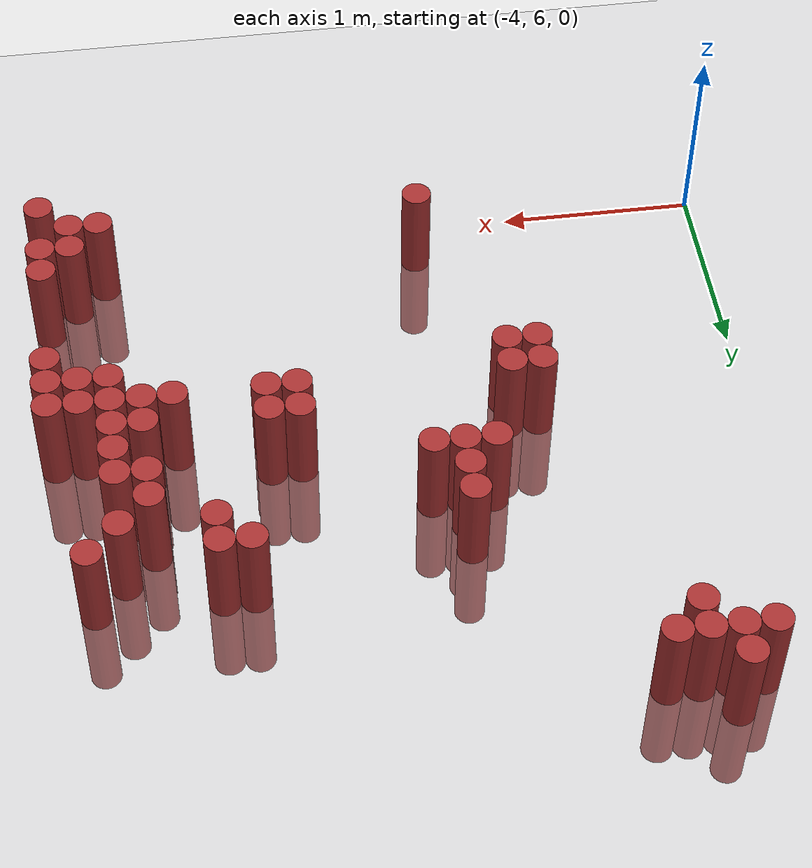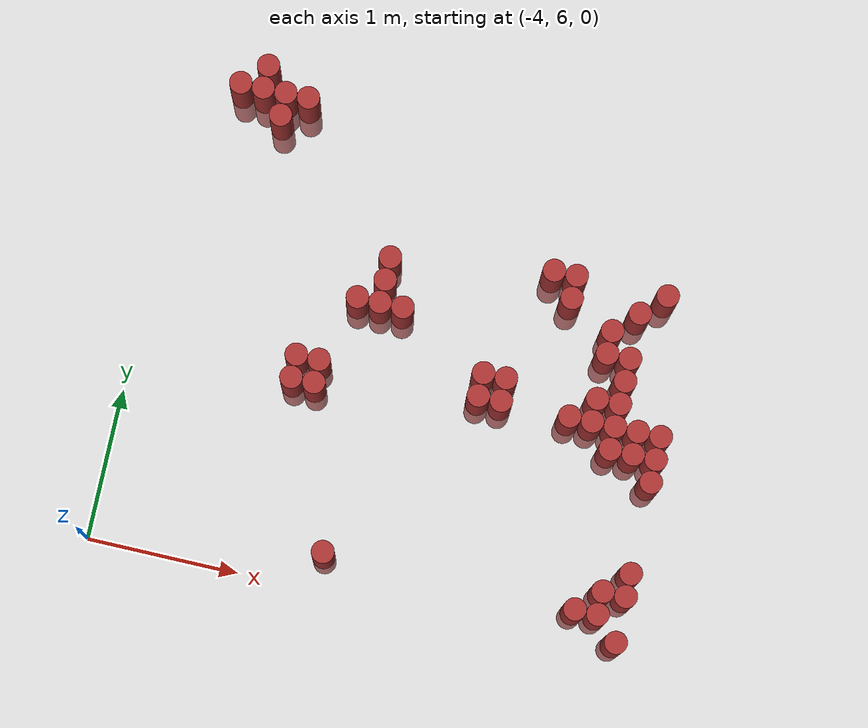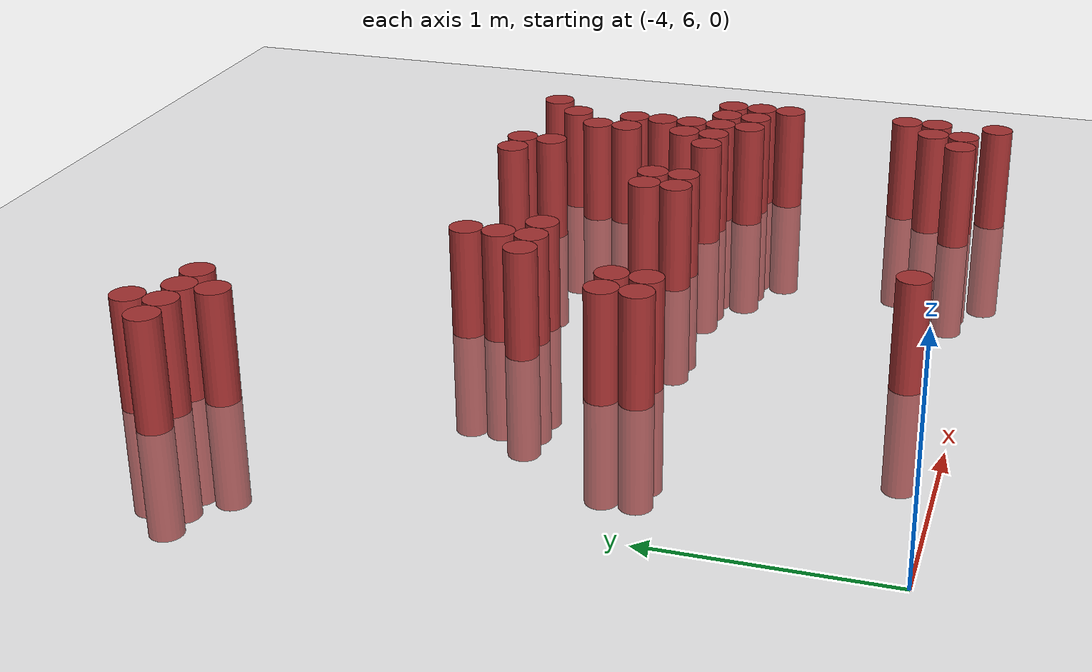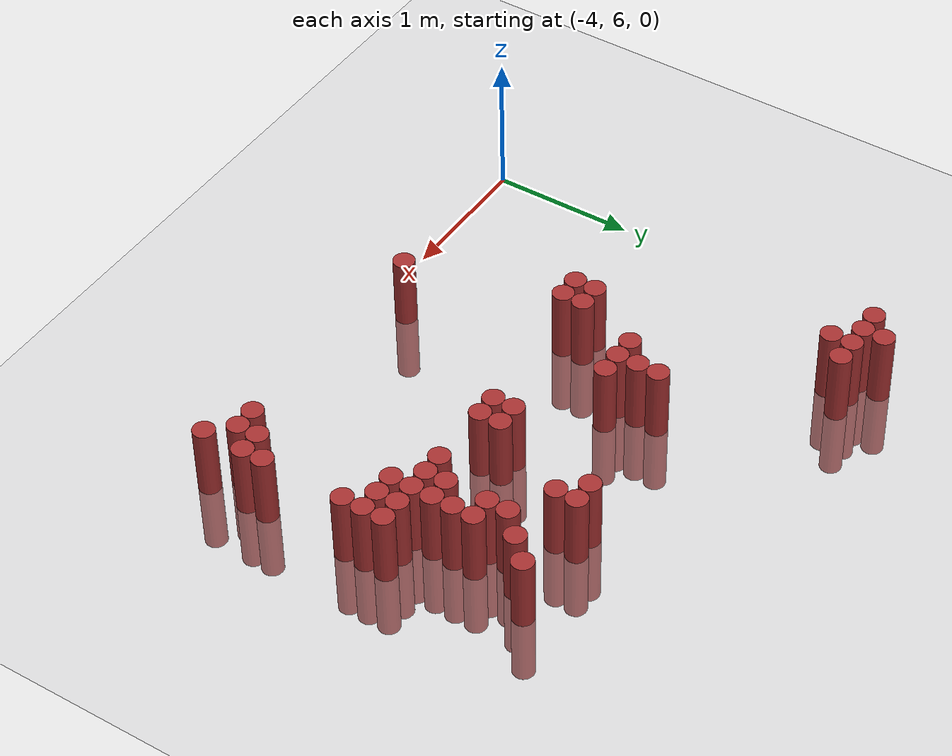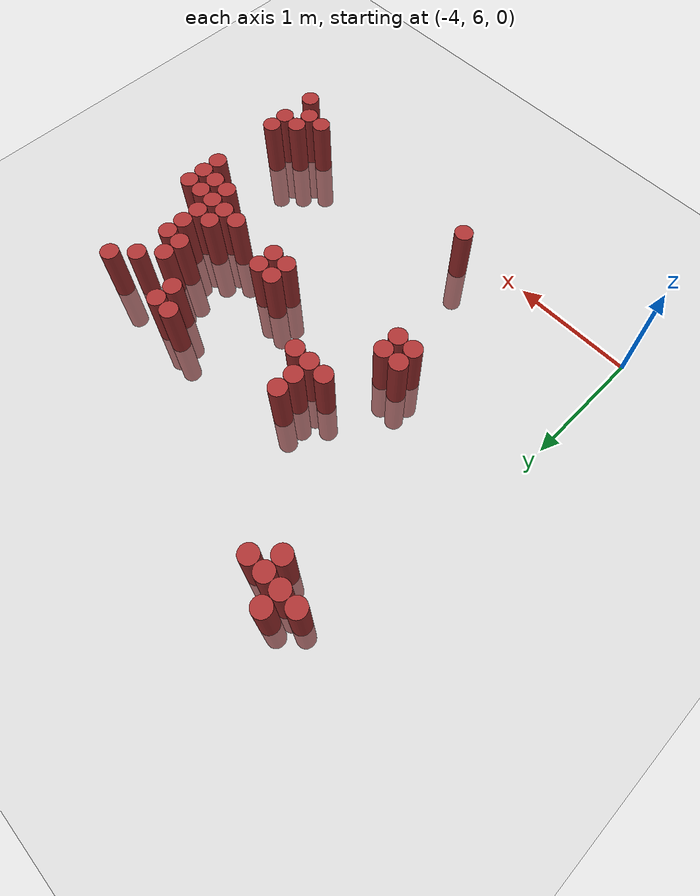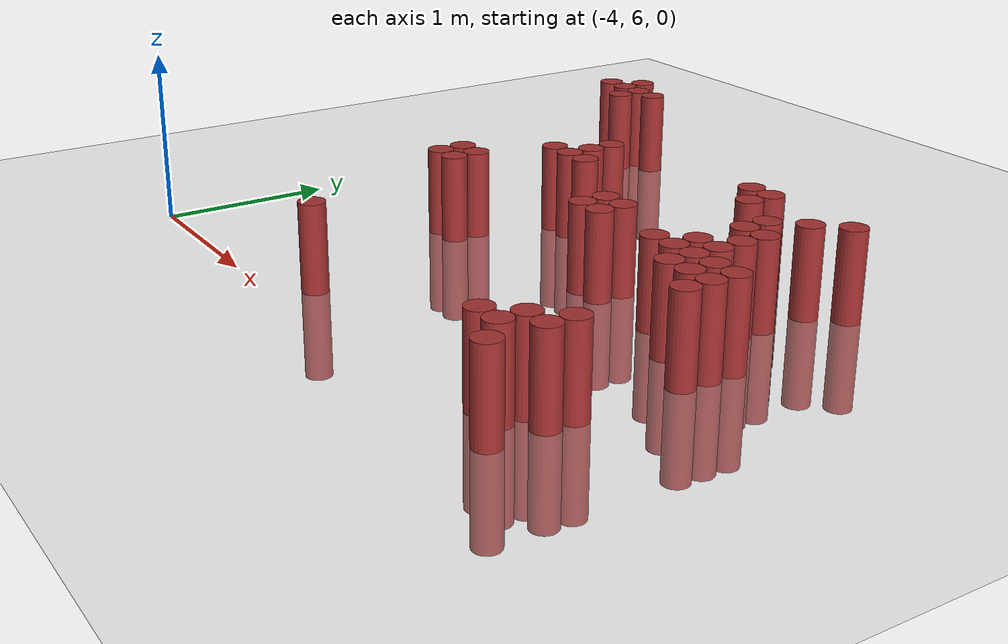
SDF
<sdf version="1.6">
 <world name="default">
  <model name="ground_plane">
   <static>1</static>
   <link name="link">
    <collision name="collision">
     <geometry><plane><normal>0 0 1</normal><size>100 100</size></plane></geometry>
     <surface><friction><ode><mu>100</mu><mu2>50</mu2></ode></friction></surface>
    </collision>
    <visual name="visual">
     <cast_shadows>0</cast_shadows>
     <geometry><plane><normal>0 0 1</normal><size>100 100</size></plane></geometry>
     <material>
      <script><uri>file://media/materials/scripts/gazebo.material</uri><name>Gazebo/Grey</name></script>
     </material>
    </visual>
   </link>
  </model>
  <model name="unit_cylinder_153">
   <static>1</static>
   <pose>-3.675000 9.075000 0.000000 0.000000 0.000000 0.000000</pose>
   <link name="link">
    <inertial>
     <mass>1</mass>
     <inertia><ixx>0.145833</ixx><ixy>0</ixy><ixz>0</ixz><iyy>0.145833</iyy><iyz>0</iyz><izz>0.125</izz></inertia>
    </inertial>
    <collision name="collision">
     <geometry><cylinder><radius>0.075000</radius><length>1</length></cylinder></geometry>
    </collision>
    <visual name="visual">
     <geometry><cylinder><radius>0.075000</radius><length>1</length></cylinder></geometry>
     <material>
      <ambient>0.648000 0.192000 0.192000 1</ambient>
      <diffuse>0.648000 0.192000 0.192000 1</diffuse>
     </material>
     <material>
      <script><name>Gazebo/Grey</name><uri>file://media/materials/scripts/gazebo.material</uri></script>
     </material>
    </visual>
   </link>
  </model>
  <model name="unit_cylinder_154">
   <static>1</static>
   <pose>-3.525000 9.075000 0.000000 0.000000 0.000000 0.000000</pose>
   <link name="link">
    <inertial>
     <mass>1</mass>
     <inertia><ixx>0.145833</ixx><ixy>0</ixy><ixz>0</ixz><iyy>0.145833</iyy><iyz>0</iyz><izz>0.125</izz></inertia>
    </inertial>
    <collision name="collision">
     <geometry><cylinder><radius>0.075000</radius><length>1</length></cylinder></geometry>
    </collision>
    <visual name="visual">
     <geometry><cylinder><radius>0.075000</radius><length>1</length></cylinder></geometry>
     <material>
      <ambient>0.648000 0.192000 0.192000 1</ambient>
      <diffuse>0.648000 0.192000 0.192000 1</diffuse>
     </material>
     <material>
      <script><name>Gazebo/Grey</name><uri>file://media/materials/scripts/gazebo.material</uri></script>
     </material>
    </visual>
   </link>
  </model>
  <model name="unit_cylinder_155">
   <static>1</static>
   <pose>-3.525000 9.225000 0.000000 0.000000 0.000000 0.000000</pose>
   <link name="link">
    <inertial>
     <mass>1</mass>
     <inertia><ixx>0.145833</ixx><ixy>0</ixy><ixz>0</ixz><iyy>0.145833</iyy><iyz>0</iyz><izz>0.125</izz></inertia>
    </inertial>
    <collision name="collision">
     <geometry><cylinder><radius>0.075000</radius><length>1</length></cylinder></geometry>
    </collision>
    <visual name="visual">
     <geometry><cylinder><radius>0.075000</radius><length>1</length></cylinder></geometry>
     <material>
      <ambient>0.648000 0.192000 0.192000 1</ambient>
      <diffuse>0.648000 0.192000 0.192000 1</diffuse>
     </material>
     <material>
      <script><name>Gazebo/Grey</name><uri>file://media/materials/scripts/gazebo.material</uri></script>
     </material>
    </visual>
   </link>
  </model>
  <model name="unit_cylinder_156">
   <static>1</static>
   <pose>-3.375000 8.925000 0.000000 0.000000 0.000000 0.000000</pose>
   <link name="link">
    <inertial>
     <mass>1</mass>
     <inertia><ixx>0.145833</ixx><ixy>0</ixy><ixz>0</ixz><iyy>0.145833</iyy><iyz>0</iyz><izz>0.125</izz></inertia>
    </inertial>
    <collision name="collision">
     <geometry><cylinder><radius>0.075000</radius><length>1</length></cylinder></geometry>
    </collision>
    <visual name="visual">
     <geometry><cylinder><radius>0.075000</radius><length>1</length></cylinder></geometry>
     <material>
      <ambient>0.648000 0.192000 0.192000 1</ambient>
      <diffuse>0.648000 0.192000 0.192000 1</diffuse>
     </material>
     <material>
      <script><name>Gazebo/Grey</name><uri>file://media/materials/scripts/gazebo.material</uri></script>
     </material>
    </visual>
   </link>
  </model>
  <model name="unit_cylinder_157">
   <static>1</static>
   <pose>-3.375000 9.075000 0.000000 0.000000 0.000000 0.000000</pose>
   <link name="link">
    <inertial>
     <mass>1</mass>
     <inertia><ixx>0.145833</ixx><ixy>0</ixy><ixz>0</ixz><iyy>0.145833</iyy><iyz>0</iyz><izz>0.125</izz></inertia>
    </inertial>
    <collision name="collision">
     <geometry><cylinder><radius>0.075000</radius><length>1</length></cylinder></geometry>
    </collision>
    <visual name="visual">
     <geometry><cylinder><radius>0.075000</radius><length>1</length></cylinder></geometry>
     <material>
      <ambient>0.648000 0.192000 0.192000 1</ambient>
      <diffuse>0.648000 0.192000 0.192000 1</diffuse>
     </material>
     <material>
      <script><name>Gazebo/Grey</name><uri>file://media/materials/scripts/gazebo.material</uri></script>
     </material>
    </visual>
   </link>
  </model>
  <model name="unit_cylinder_158">
   <static>1</static>
   <pose>-3.225000 9.075000 0.000000 0.000000 0.000000 0.000000</pose>
   <link name="link">
    <inertial>
     <mass>1</mass>
     <inertia><ixx>0.145833</ixx><ixy>0</ixy><ixz>0</ixz><iyy>0.145833</iyy><iyz>0</iyz><izz>0.125</izz></inertia>
    </inertial>
    <collision name="collision">
     <geometry><cylinder><radius>0.075000</radius><length>1</length></cylinder></geometry>
    </collision>
    <visual name="visual">
     <geometry><cylinder><radius>0.075000</radius><length>1</length></cylinder></geometry>
     <material>
      <ambient>0.648000 0.192000 0.192000 1</ambient>
      <diffuse>0.648000 0.192000 0.192000 1</diffuse>
     </material>
     <material>
      <script><name>Gazebo/Grey</name><uri>file://media/materials/scripts/gazebo.material</uri></script>
     </material>
    </visual>
   </link>
  </model>
  <model name="unit_cylinder_162">
   <static>1</static>
   <pose>-2.925000 7.275000 0.000000 0.000000 0.000000 0.000000</pose>
   <link name="link">
    <inertial>
     <mass>1</mass>
     <inertia><ixx>0.145833</ixx><ixy>0</ixy><ixz>0</ixz><iyy>0.145833</iyy><iyz>0</iyz><izz>0.125</izz></inertia>
    </inertial>
    <collision name="collision">
     <geometry><cylinder><radius>0.075000</radius><length>1</length></cylinder></geometry>
    </collision>
    <visual name="visual">
     <geometry><cylinder><radius>0.075000</radius><length>1</length></cylinder></geometry>
     <material>
      <ambient>0.648000 0.192000 0.192000 1</ambient>
      <diffuse>0.648000 0.192000 0.192000 1</diffuse>
     </material>
     <material>
      <script><name>Gazebo/Grey</name><uri>file://media/materials/scripts/gazebo.material</uri></script>
     </material>
    </visual>
   </link>
  </model>
  <model name="unit_cylinder_163">
   <static>1</static>
   <pose>-2.925000 7.425000 0.000000 0.000000 0.000000 0.000000</pose>
   <link name="link">
    <inertial>
     <mass>1</mass>
     <inertia><ixx>0.145833</ixx><ixy>0</ixy><ixz>0</ixz><iyy>0.145833</iyy><iyz>0</iyz><izz>0.125</izz></inertia>
    </inertial>
    <collision name="collision">
     <geometry><cylinder><radius>0.075000</radius><length>1</length></cylinder></geometry>
    </collision>
    <visual name="visual">
     <geometry><cylinder><radius>0.075000</radius><length>1</length></cylinder></geometry>
     <material>
      <ambient>0.648000 0.192000 0.192000 1</ambient>
      <diffuse>0.648000 0.192000 0.192000 1</diffuse>
     </material>
     <material>
      <script><name>Gazebo/Grey</name><uri>file://media/materials/scripts/gazebo.material</uri></script>
     </material>
    </visual>
   </link>
  </model>
  <model name="unit_cylinder_166">
   <static>1</static>
   <pose>-2.775000 7.275000 0.000000 0.000000 0.000000 0.000000</pose>
   <link name="link">
    <inertial>
     <mass>1</mass>
     <inertia><ixx>0.145833</ixx><ixy>0</ixy><ixz>0</ixz><iyy>0.145833</iyy><iyz>0</iyz><izz>0.125</izz></inertia>
    </inertial>
    <collision name="collision">
     <geometry><cylinder><radius>0.075000</radius><length>1</length></cylinder></geometry>
    </collision>
    <visual name="visual">
     <geometry><cylinder><radius>0.075000</radius><length>1</length></cylinder></geometry>
     <material>
      <ambient>0.648000 0.192000 0.192000 1</ambient>
      <diffuse>0.648000 0.192000 0.192000 1</diffuse>
     </material>
     <material>
      <script><name>Gazebo/Grey</name><uri>file://media/materials/scripts/gazebo.material</uri></script>
     </material>
    </visual>
   </link>
  </model>
  <model name="unit_cylinder_167">
   <static>1</static>
   <pose>-2.775000 7.425000 0.000000 0.000000 0.000000 0.000000</pose>
   <link name="link">
    <inertial>
     <mass>1</mass>
     <inertia><ixx>0.145833</ixx><ixy>0</ixy><ixz>0</ixz><iyy>0.145833</iyy><iyz>0</iyz><izz>0.125</izz></inertia>
    </inertial>
    <collision name="collision">
     <geometry><cylinder><radius>0.075000</radius><length>1</length></cylinder></geometry>
    </collision>
    <visual name="visual">
     <geometry><cylinder><radius>0.075000</radius><length>1</length></cylinder></geometry>
     <material>
      <ambient>0.648000 0.192000 0.192000 1</ambient>
      <diffuse>0.648000 0.192000 0.192000 1</diffuse>
     </material>
     <material>
      <script><name>Gazebo/Grey</name><uri>file://media/materials/scripts/gazebo.material</uri></script>
     </material>
    </visual>
   </link>
  </model>
  <model name="unit_cylinder_172">
   <static>1</static>
   <pose>-2.625000 7.875000 0.000000 0.000000 0.000000 0.000000</pose>
   <link name="link">
    <inertial>
     <mass>1</mass>
     <inertia><ixx>0.145833</ixx><ixy>0</ixy><ixz>0</ixz><iyy>0.145833</iyy><iyz>0</iyz><izz>0.125</izz></inertia>
    </inertial>
    <collision name="collision">
     <geometry><cylinder><radius>0.075000</radius><length>1</length></cylinder></geometry>
    </collision>
    <visual name="visual">
     <geometry><cylinder><radius>0.075000</radius><length>1</length></cylinder></geometry>
     <material>
      <ambient>0.648000 0.192000 0.192000 1</ambient>
      <diffuse>0.648000 0.192000 0.192000 1</diffuse>
     </material>
     <material>
      <script><name>Gazebo/Grey</name><uri>file://media/materials/scripts/gazebo.material</uri></script>
     </material>
    </visual>
   </link>
  </model>
  <model name="unit_cylinder_176">
   <static>1</static>
   <pose>-2.475000 6.225000 0.000000 0.000000 0.000000 0.000000</pose>
   <link name="link">
    <inertial>
     <mass>1</mass>
     <inertia><ixx>0.145833</ixx><ixy>0</ixy><ixz>0</ixz><iyy>0.145833</iyy><iyz>0</iyz><izz>0.125</izz></inertia>
    </inertial>
    <collision name="collision">
     <geometry><cylinder><radius>0.075000</radius><length>1</length></cylinder></geometry>
    </collision>
    <visual name="visual">
     <geometry><cylinder><radius>0.075000</radius><length>1</length></cylinder></geometry>
     <material>
      <ambient>0.648000 0.192000 0.192000 1</ambient>
      <diffuse>0.648000 0.192000 0.192000 1</diffuse>
     </material>
     <material>
      <script><name>Gazebo/Grey</name><uri>file://media/materials/scripts/gazebo.material</uri></script>
     </material>
    </visual>
   </link>
  </model>
  <model name="unit_cylinder_177">
   <static>1</static>
   <pose>-2.475000 7.875000 0.000000 0.000000 0.000000 0.000000</pose>
   <link name="link">
    <inertial>
     <mass>1</mass>
     <inertia><ixx>0.145833</ixx><ixy>0</ixy><ixz>0</ixz><iyy>0.145833</iyy><iyz>0</iyz><izz>0.125</izz></inertia>
    </inertial>
    <collision name="collision">
     <geometry><cylinder><radius>0.075000</radius><length>1</length></cylinder></geometry>
    </collision>
    <visual name="visual">
     <geometry><cylinder><radius>0.075000</radius><length>1</length></cylinder></geometry>
     <material>
      <ambient>0.648000 0.192000 0.192000 1</ambient>
      <diffuse>0.648000 0.192000 0.192000 1</diffuse>
     </material>
     <material>
      <script><name>Gazebo/Grey</name><uri>file://media/materials/scripts/gazebo.material</uri></script>
     </material>
    </visual>
   </link>
  </model>
  <model name="unit_cylinder_178">
   <static>1</static>
   <pose>-2.475000 8.025000 0.000000 0.000000 0.000000 0.000000</pose>
   <link name="link">
    <inertial>
     <mass>1</mass>
     <inertia><ixx>0.145833</ixx><ixy>0</ixy><ixz>0</ixz><iyy>0.145833</iyy><iyz>0</iyz><izz>0.125</izz></inertia>
    </inertial>
    <collision name="collision">
     <geometry><cylinder><radius>0.075000</radius><length>1</length></cylinder></geometry>
    </collision>
    <visual name="visual">
     <geometry><cylinder><radius>0.075000</radius><length>1</length></cylinder></geometry>
     <material>
      <ambient>0.648000 0.192000 0.192000 1</ambient>
      <diffuse>0.648000 0.192000 0.192000 1</diffuse>
     </material>
     <material>
      <script><name>Gazebo/Grey</name><uri>file://media/materials/scripts/gazebo.material</uri></script>
     </material>
    </visual>
   </link>
  </model>
  <model name="unit_cylinder_179">
   <static>1</static>
   <pose>-2.475000 8.175000 0.000000 0.000000 0.000000 0.000000</pose>
   <link name="link">
    <inertial>
     <mass>1</mass>
     <inertia><ixx>0.145833</ixx><ixy>0</ixy><ixz>0</ixz><iyy>0.145833</iyy><iyz>0</iyz><izz>0.125</izz></inertia>
    </inertial>
    <collision name="collision">
     <geometry><cylinder><radius>0.075000</radius><length>1</length></cylinder></geometry>
    </collision>
    <visual name="visual">
     <geometry><cylinder><radius>0.075000</radius><length>1</length></cylinder></geometry>
     <material>
      <ambient>0.648000 0.192000 0.192000 1</ambient>
      <diffuse>0.648000 0.192000 0.192000 1</diffuse>
     </material>
     <material>
      <script><name>Gazebo/Grey</name><uri>file://media/materials/scripts/gazebo.material</uri></script>
     </material>
    </visual>
   </link>
  </model>
  <model name="unit_cylinder_184">
   <static>1</static>
   <pose>-2.325000 7.875000 0.000000 0.000000 0.000000 0.000000</pose>
   <link name="link">
    <inertial>
     <mass>1</mass>
     <inertia><ixx>0.145833</ixx><ixy>0</ixy><ixz>0</ixz><iyy>0.145833</iyy><iyz>0</iyz><izz>0.125</izz></inertia>
    </inertial>
    <collision name="collision">
     <geometry><cylinder><radius>0.075000</radius><length>1</length></cylinder></geometry>
    </collision>
    <visual name="visual">
     <geometry><cylinder><radius>0.075000</radius><length>1</length></cylinder></geometry>
     <material>
      <ambient>0.648000 0.192000 0.192000 1</ambient>
      <diffuse>0.648000 0.192000 0.192000 1</diffuse>
     </material>
     <material>
      <script><name>Gazebo/Grey</name><uri>file://media/materials/scripts/gazebo.material</uri></script>
     </material>
    </visual>
   </link>
  </model>
  <model name="unit_cylinder_189">
   <static>1</static>
   <pose>-1.725000 7.425000 0.000000 0.000000 0.000000 0.000000</pose>
   <link name="link">
    <inertial>
     <mass>1</mass>
     <inertia><ixx>0.145833</ixx><ixy>0</ixy><ixz>0</ixz><iyy>0.145833</iyy><iyz>0</iyz><izz>0.125</izz></inertia>
    </inertial>
    <collision name="collision">
     <geometry><cylinder><radius>0.075000</radius><length>1</length></cylinder></geometry>
    </collision>
    <visual name="visual">
     <geometry><cylinder><radius>0.075000</radius><length>1</length></cylinder></geometry>
     <material>
      <ambient>0.648000 0.192000 0.192000 1</ambient>
      <diffuse>0.648000 0.192000 0.192000 1</diffuse>
     </material>
     <material>
      <script><name>Gazebo/Grey</name><uri>file://media/materials/scripts/gazebo.material</uri></script>
     </material>
    </visual>
   </link>
  </model>
  <model name="unit_cylinder_190">
   <static>1</static>
   <pose>-1.725000 7.575000 0.000000 0.000000 0.000000 0.000000</pose>
   <link name="link">
    <inertial>
     <mass>1</mass>
     <inertia><ixx>0.145833</ixx><ixy>0</ixy><ixz>0</ixz><iyy>0.145833</iyy><iyz>0</iyz><izz>0.125</izz></inertia>
    </inertial>
    <collision name="collision">
     <geometry><cylinder><radius>0.075000</radius><length>1</length></cylinder></geometry>
    </collision>
    <visual name="visual">
     <geometry><cylinder><radius>0.075000</radius><length>1</length></cylinder></geometry>
     <material>
      <ambient>0.648000 0.192000 0.192000 1</ambient>
      <diffuse>0.648000 0.192000 0.192000 1</diffuse>
     </material>
     <material>
      <script><name>Gazebo/Grey</name><uri>file://media/materials/scripts/gazebo.material</uri></script>
     </material>
    </visual>
   </link>
  </model>
  <model name="unit_cylinder_191">
   <static>1</static>
   <pose>-1.575000 7.425000 0.000000 0.000000 0.000000 0.000000</pose>
   <link name="link">
    <inertial>
     <mass>1</mass>
     <inertia><ixx>0.145833</ixx><ixy>0</ixy><ixz>0</ixz><iyy>0.145833</iyy><iyz>0</iyz><izz>0.125</izz></inertia>
    </inertial>
    <collision name="collision">
     <geometry><cylinder><radius>0.075000</radius><length>1</length></cylinder></geometry>
    </collision>
    <visual name="visual">
     <geometry><cylinder><radius>0.075000</radius><length>1</length></cylinder></geometry>
     <material>
      <ambient>0.648000 0.192000 0.192000 1</ambient>
      <diffuse>0.648000 0.192000 0.192000 1</diffuse>
     </material>
     <material>
      <script><name>Gazebo/Grey</name><uri>file://media/materials/scripts/gazebo.material</uri></script>
     </material>
    </visual>
   </link>
  </model>
  <model name="unit_cylinder_192">
   <static>1</static>
   <pose>-1.575000 7.575000 0.000000 0.000000 0.000000 0.000000</pose>
   <link name="link">
    <inertial>
     <mass>1</mass>
     <inertia><ixx>0.145833</ixx><ixy>0</ixy><ixz>0</ixz><iyy>0.145833</iyy><iyz>0</iyz><izz>0.125</izz></inertia>
    </inertial>
    <collision name="collision">
     <geometry><cylinder><radius>0.075000</radius><length>1</length></cylinder></geometry>
    </collision>
    <visual name="visual">
     <geometry><cylinder><radius>0.075000</radius><length>1</length></cylinder></geometry>
     <material>
      <ambient>0.648000 0.192000 0.192000 1</ambient>
      <diffuse>0.648000 0.192000 0.192000 1</diffuse>
     </material>
     <material>
      <script><name>Gazebo/Grey</name><uri>file://media/materials/scripts/gazebo.material</uri></script>
     </material>
    </visual>
   </link>
  </model>
  <model name="unit_cylinder_193">
   <static>1</static>
   <pose>-1.425000 8.325000 0.000000 0.000000 0.000000 0.000000</pose>
   <link name="link">
    <inertial>
     <mass>1</mass>
     <inertia><ixx>0.145833</ixx><ixy>0</ixy><ixz>0</ixz><iyy>0.145833</iyy><iyz>0</iyz><izz>0.125</izz></inertia>
    </inertial>
    <collision name="collision">
     <geometry><cylinder><radius>0.075000</radius><length>1</length></cylinder></geometry>
    </collision>
    <visual name="visual">
     <geometry><cylinder><radius>0.075000</radius><length>1</length></cylinder></geometry>
     <material>
      <ambient>0.648000 0.192000 0.192000 1</ambient>
      <diffuse>0.648000 0.192000 0.192000 1</diffuse>
     </material>
     <material>
      <script><name>Gazebo/Grey</name><uri>file://media/materials/scripts/gazebo.material</uri></script>
     </material>
    </visual>
   </link>
  </model>
  <model name="unit_cylinder_194">
   <static>1</static>
   <pose>-1.275000 8.175000 0.000000 0.000000 0.000000 0.000000</pose>
   <link name="link">
    <inertial>
     <mass>1</mass>
     <inertia><ixx>0.145833</ixx><ixy>0</ixy><ixz>0</ixz><iyy>0.145833</iyy><iyz>0</iyz><izz>0.125</izz></inertia>
    </inertial>
    <collision name="collision">
     <geometry><cylinder><radius>0.075000</radius><length>1</length></cylinder></geometry>
    </collision>
    <visual name="visual">
     <geometry><cylinder><radius>0.075000</radius><length>1</length></cylinder></geometry>
     <material>
      <ambient>0.648000 0.192000 0.192000 1</ambient>
      <diffuse>0.648000 0.192000 0.192000 1</diffuse>
     </material>
     <material>
      <script><name>Gazebo/Grey</name><uri>file://media/materials/scripts/gazebo.material</uri></script>
     </material>
    </visual>
   </link>
  </model>
  <model name="unit_cylinder_195">
   <static>1</static>
   <pose>-1.275000 8.325000 0.000000 0.000000 0.000000 0.000000</pose>
   <link name="link">
    <inertial>
     <mass>1</mass>
     <inertia><ixx>0.145833</ixx><ixy>0</ixy><ixz>0</ixz><iyy>0.145833</iyy><iyz>0</iyz><izz>0.125</izz></inertia>
    </inertial>
    <collision name="collision">
     <geometry><cylinder><radius>0.075000</radius><length>1</length></cylinder></geometry>
    </collision>
    <visual name="visual">
     <geometry><cylinder><radius>0.075000</radius><length>1</length></cylinder></geometry>
     <material>
      <ambient>0.648000 0.192000 0.192000 1</ambient>
      <diffuse>0.648000 0.192000 0.192000 1</diffuse>
     </material>
     <material>
      <script><name>Gazebo/Grey</name><uri>file://media/materials/scripts/gazebo.material</uri></script>
     </material>
    </visual>
   </link>
  </model>
  <model name="unit_cylinder_196">
   <static>1</static>
   <pose>-1.125000 7.425000 0.000000 0.000000 0.000000 0.000000</pose>
   <link name="link">
    <inertial>
     <mass>1</mass>
     <inertia><ixx>0.145833</ixx><ixy>0</ixy><ixz>0</ixz><iyy>0.145833</iyy><iyz>0</iyz><izz>0.125</izz></inertia>
    </inertial>
    <collision name="collision">
     <geometry><cylinder><radius>0.075000</radius><length>1</length></cylinder></geometry>
    </collision>
    <visual name="visual">
     <geometry><cylinder><radius>0.075000</radius><length>1</length></cylinder></geometry>
     <material>
      <ambient>0.648000 0.192000 0.192000 1</ambient>
      <diffuse>0.648000 0.192000 0.192000 1</diffuse>
     </material>
     <material>
      <script><name>Gazebo/Grey</name><uri>file://media/materials/scripts/gazebo.material</uri></script>
     </material>
    </visual>
   </link>
  </model>
  <model name="unit_cylinder_198">
   <static>1</static>
   <pose>-0.975000 7.425000 0.000000 0.000000 0.000000 0.000000</pose>
   <link name="link">
    <inertial>
     <mass>1</mass>
     <inertia><ixx>0.145833</ixx><ixy>0</ixy><ixz>0</ixz><iyy>0.145833</iyy><iyz>0</iyz><izz>0.125</izz></inertia>
    </inertial>
    <collision name="collision">
     <geometry><cylinder><radius>0.075000</radius><length>1</length></cylinder></geometry>
    </collision>
    <visual name="visual">
     <geometry><cylinder><radius>0.075000</radius><length>1</length></cylinder></geometry>
     <material>
      <ambient>0.648000 0.192000 0.192000 1</ambient>
      <diffuse>0.648000 0.192000 0.192000 1</diffuse>
     </material>
     <material>
      <script><name>Gazebo/Grey</name><uri>file://media/materials/scripts/gazebo.material</uri></script>
     </material>
    </visual>
   </link>
  </model>
  <model name="unit_cylinder_199">
   <static>1</static>
   <pose>-0.975000 7.575000 0.000000 0.000000 0.000000 0.000000</pose>
   <link name="link">
    <inertial>
     <mass>1</mass>
     <inertia><ixx>0.145833</ixx><ixy>0</ixy><ixz>0</ixz><iyy>0.145833</iyy><iyz>0</iyz><izz>0.125</izz></inertia>
    </inertial>
    <collision name="collision">
     <geometry><cylinder><radius>0.075000</radius><length>1</length></cylinder></geometry>
    </collision>
    <visual name="visual">
     <geometry><cylinder><radius>0.075000</radius><length>1</length></cylinder></geometry>
     <material>
      <ambient>0.648000 0.192000 0.192000 1</ambient>
      <diffuse>0.648000 0.192000 0.192000 1</diffuse>
     </material>
     <material>
      <script><name>Gazebo/Grey</name><uri>file://media/materials/scripts/gazebo.material</uri></script>
     </material>
    </visual>
   </link>
  </model>
  <model name="unit_cylinder_200">
   <static>1</static>
   <pose>-0.975000 7.875000 0.000000 0.000000 0.000000 0.000000</pose>
   <link name="link">
    <inertial>
     <mass>1</mass>
     <inertia><ixx>0.145833</ixx><ixy>0</ixy><ixz>0</ixz><iyy>0.145833</iyy><iyz>0</iyz><izz>0.125</izz></inertia>
    </inertial>
    <collision name="collision">
     <geometry><cylinder><radius>0.075000</radius><length>1</length></cylinder></geometry>
    </collision>
    <visual name="visual">
     <geometry><cylinder><radius>0.075000</radius><length>1</length></cylinder></geometry>
     <material>
      <ambient>0.648000 0.192000 0.192000 1</ambient>
      <diffuse>0.648000 0.192000 0.192000 1</diffuse>
     </material>
     <material>
      <script><name>Gazebo/Grey</name><uri>file://media/materials/scripts/gazebo.material</uri></script>
     </material>
    </visual>
   </link>
  </model>
  <model name="unit_cylinder_201">
   <static>1</static>
   <pose>-0.975000 8.025000 0.000000 0.000000 0.000000 0.000000</pose>
   <link name="link">
    <inertial>
     <mass>1</mass>
     <inertia><ixx>0.145833</ixx><ixy>0</ixy><ixz>0</ixz><iyy>0.145833</iyy><iyz>0</iyz><izz>0.125</izz></inertia>
    </inertial>
    <collision name="collision">
     <geometry><cylinder><radius>0.075000</radius><length>1</length></cylinder></geometry>
    </collision>
    <visual name="visual">
     <geometry><cylinder><radius>0.075000</radius><length>1</length></cylinder></geometry>
     <material>
      <ambient>0.648000 0.192000 0.192000 1</ambient>
      <diffuse>0.648000 0.192000 0.192000 1</diffuse>
     </material>
     <material>
      <script><name>Gazebo/Grey</name><uri>file://media/materials/scripts/gazebo.material</uri></script>
     </material>
    </visual>
   </link>
  </model>
  <model name="unit_cylinder_203">
   <static>1</static>
   <pose>-0.825000 6.225000 0.000000 0.000000 0.000000 0.000000</pose>
   <link name="link">
    <inertial>
     <mass>1</mass>
     <inertia><ixx>0.145833</ixx><ixy>0</ixy><ixz>0</ixz><iyy>0.145833</iyy><iyz>0</iyz><izz>0.125</izz></inertia>
    </inertial>
    <collision name="collision">
     <geometry><cylinder><radius>0.075000</radius><length>1</length></cylinder></geometry>
    </collision>
    <visual name="visual">
     <geometry><cylinder><radius>0.075000</radius><length>1</length></cylinder></geometry>
     <material>
      <ambient>0.648000 0.192000 0.192000 1</ambient>
      <diffuse>0.648000 0.192000 0.192000 1</diffuse>
     </material>
     <material>
      <script><name>Gazebo/Grey</name><uri>file://media/materials/scripts/gazebo.material</uri></script>
     </material>
    </visual>
   </link>
  </model>
  <model name="unit_cylinder_204">
   <static>1</static>
   <pose>-0.825000 7.275000 0.000000 0.000000 0.000000 0.000000</pose>
   <link name="link">
    <inertial>
     <mass>1</mass>
     <inertia><ixx>0.145833</ixx><ixy>0</ixy><ixz>0</ixz><iyy>0.145833</iyy><iyz>0</iyz><izz>0.125</izz></inertia>
    </inertial>
    <collision name="collision">
     <geometry><cylinder><radius>0.075000</radius><length>1</length></cylinder></geometry>
    </collision>
    <visual name="visual">
     <geometry><cylinder><radius>0.075000</radius><length>1</length></cylinder></geometry>
     <material>
      <ambient>0.648000 0.192000 0.192000 1</ambient>
      <diffuse>0.648000 0.192000 0.192000 1</diffuse>
     </material>
     <material>
      <script><name>Gazebo/Grey</name><uri>file://media/materials/scripts/gazebo.material</uri></script>
     </material>
    </visual>
   </link>
  </model>
  <model name="unit_cylinder_205">
   <static>1</static>
   <pose>-0.825000 7.425000 0.000000 0.000000 0.000000 0.000000</pose>
   <link name="link">
    <inertial>
     <mass>1</mass>
     <inertia><ixx>0.145833</ixx><ixy>0</ixy><ixz>0</ixz><iyy>0.145833</iyy><iyz>0</iyz><izz>0.125</izz></inertia>
    </inertial>
    <collision name="collision">
     <geometry><cylinder><radius>0.075000</radius><length>1</length></cylinder></geometry>
    </collision>
    <visual name="visual">
     <geometry><cylinder><radius>0.075000</radius><length>1</length></cylinder></geometry>
     <material>
      <ambient>0.648000 0.192000 0.192000 1</ambient>
      <diffuse>0.648000 0.192000 0.192000 1</diffuse>
     </material>
     <material>
      <script><name>Gazebo/Grey</name><uri>file://media/materials/scripts/gazebo.material</uri></script>
     </material>
    </visual>
   </link>
  </model>
  <model name="unit_cylinder_206">
   <static>1</static>
   <pose>-0.825000 7.575000 0.000000 0.000000 0.000000 0.000000</pose>
   <link name="link">
    <inertial>
     <mass>1</mass>
     <inertia><ixx>0.145833</ixx><ixy>0</ixy><ixz>0</ixz><iyy>0.145833</iyy><iyz>0</iyz><izz>0.125</izz></inertia>
    </inertial>
    <collision name="collision">
     <geometry><cylinder><radius>0.075000</radius><length>1</length></cylinder></geometry>
    </collision>
    <visual name="visual">
     <geometry><cylinder><radius>0.075000</radius><length>1</length></cylinder></geometry>
     <material>
      <ambient>0.648000 0.192000 0.192000 1</ambient>
      <diffuse>0.648000 0.192000 0.192000 1</diffuse>
     </material>
     <material>
      <script><name>Gazebo/Grey</name><uri>file://media/materials/scripts/gazebo.material</uri></script>
     </material>
    </visual>
   </link>
  </model>
  <model name="unit_cylinder_207">
   <static>1</static>
   <pose>-0.825000 7.725000 0.000000 0.000000 0.000000 0.000000</pose>
   <link name="link">
    <inertial>
     <mass>1</mass>
     <inertia><ixx>0.145833</ixx><ixy>0</ixy><ixz>0</ixz><iyy>0.145833</iyy><iyz>0</iyz><izz>0.125</izz></inertia>
    </inertial>
    <collision name="collision">
     <geometry><cylinder><radius>0.075000</radius><length>1</length></cylinder></geometry>
    </collision>
    <visual name="visual">
     <geometry><cylinder><radius>0.075000</radius><length>1</length></cylinder></geometry>
     <material>
      <ambient>0.648000 0.192000 0.192000 1</ambient>
      <diffuse>0.648000 0.192000 0.192000 1</diffuse>
     </material>
     <material>
      <script><name>Gazebo/Grey</name><uri>file://media/materials/scripts/gazebo.material</uri></script>
     </material>
    </visual>
   </link>
  </model>
  <model name="unit_cylinder_208">
   <static>1</static>
   <pose>-0.825000 7.875000 0.000000 0.000000 0.000000 0.000000</pose>
   <link name="link">
    <inertial>
     <mass>1</mass>
     <inertia><ixx>0.145833</ixx><ixy>0</ixy><ixz>0</ixz><iyy>0.145833</iyy><iyz>0</iyz><izz>0.125</izz></inertia>
    </inertial>
    <collision name="collision">
     <geometry><cylinder><radius>0.075000</radius><length>1</length></cylinder></geometry>
    </collision>
    <visual name="visual">
     <geometry><cylinder><radius>0.075000</radius><length>1</length></cylinder></geometry>
     <material>
      <ambient>0.648000 0.192000 0.192000 1</ambient>
      <diffuse>0.648000 0.192000 0.192000 1</diffuse>
     </material>
     <material>
      <script><name>Gazebo/Grey</name><uri>file://media/materials/scripts/gazebo.material</uri></script>
     </material>
    </visual>
   </link>
  </model>
  <model name="unit_cylinder_209">
   <static>1</static>
   <pose>-0.825000 8.175000 0.000000 0.000000 0.000000 0.000000</pose>
   <link name="link">
    <inertial>
     <mass>1</mass>
     <inertia><ixx>0.145833</ixx><ixy>0</ixy><ixz>0</ixz><iyy>0.145833</iyy><iyz>0</iyz><izz>0.125</izz></inertia>
    </inertial>
    <collision name="collision">
     <geometry><cylinder><radius>0.075000</radius><length>1</length></cylinder></geometry>
    </collision>
    <visual name="visual">
     <geometry><cylinder><radius>0.075000</radius><length>1</length></cylinder></geometry>
     <material>
      <ambient>0.648000 0.192000 0.192000 1</ambient>
      <diffuse>0.648000 0.192000 0.192000 1</diffuse>
     </material>
     <material>
      <script><name>Gazebo/Grey</name><uri>file://media/materials/scripts/gazebo.material</uri></script>
     </material>
    </visual>
   </link>
  </model>
  <model name="unit_cylinder_211">
   <static>1</static>
   <pose>-0.675000 6.225000 0.000000 0.000000 0.000000 0.000000</pose>
   <link name="link">
    <inertial>
     <mass>1</mass>
     <inertia><ixx>0.145833</ixx><ixy>0</ixy><ixz>0</ixz><iyy>0.145833</iyy><iyz>0</iyz><izz>0.125</izz></inertia>
    </inertial>
    <collision name="collision">
     <geometry><cylinder><radius>0.075000</radius><length>1</length></cylinder></geometry>
    </collision>
    <visual name="visual">
     <geometry><cylinder><radius>0.075000</radius><length>1</length></cylinder></geometry>
     <material>
      <ambient>0.648000 0.192000 0.192000 1</ambient>
      <diffuse>0.648000 0.192000 0.192000 1</diffuse>
     </material>
     <material>
      <script><name>Gazebo/Grey</name><uri>file://media/materials/scripts/gazebo.material</uri></script>
     </material>
    </visual>
   </link>
  </model>
  <model name="unit_cylinder_212">
   <static>1</static>
   <pose>-0.675000 6.375000 0.000000 0.000000 0.000000 0.000000</pose>
   <link name="link">
    <inertial>
     <mass>1</mass>
     <inertia><ixx>0.145833</ixx><ixy>0</ixy><ixz>0</ixz><iyy>0.145833</iyy><iyz>0</iyz><izz>0.125</izz></inertia>
    </inertial>
    <collision name="collision">
     <geometry><cylinder><radius>0.075000</radius><length>1</length></cylinder></geometry>
    </collision>
    <visual name="visual">
     <geometry><cylinder><radius>0.075000</radius><length>1</length></cylinder></geometry>
     <material>
      <ambient>0.648000 0.192000 0.192000 1</ambient>
      <diffuse>0.648000 0.192000 0.192000 1</diffuse>
     </material>
     <material>
      <script><name>Gazebo/Grey</name><uri>file://media/materials/scripts/gazebo.material</uri></script>
     </material>
    </visual>
   </link>
  </model>
  <model name="unit_cylinder_213">
   <static>1</static>
   <pose>-0.675000 7.275000 0.000000 0.000000 0.000000 0.000000</pose>
   <link name="link">
    <inertial>
     <mass>1</mass>
     <inertia><ixx>0.145833</ixx><ixy>0</ixy><ixz>0</ixz><iyy>0.145833</iyy><iyz>0</iyz><izz>0.125</izz></inertia>
    </inertial>
    <collision name="collision">
     <geometry><cylinder><radius>0.075000</radius><length>1</length></cylinder></geometry>
    </collision>
    <visual name="visual">
     <geometry><cylinder><radius>0.075000</radius><length>1</length></cylinder></geometry>
     <material>
      <ambient>0.648000 0.192000 0.192000 1</ambient>
      <diffuse>0.648000 0.192000 0.192000 1</diffuse>
     </material>
     <material>
      <script><name>Gazebo/Grey</name><uri>file://media/materials/scripts/gazebo.material</uri></script>
     </material>
    </visual>
   </link>
  </model>
  <model name="unit_cylinder_214">
   <static>1</static>
   <pose>-0.675000 7.425000 0.000000 0.000000 0.000000 0.000000</pose>
   <link name="link">
    <inertial>
     <mass>1</mass>
     <inertia><ixx>0.145833</ixx><ixy>0</ixy><ixz>0</ixz><iyy>0.145833</iyy><iyz>0</iyz><izz>0.125</izz></inertia>
    </inertial>
    <collision name="collision">
     <geometry><cylinder><radius>0.075000</radius><length>1</length></cylinder></geometry>
    </collision>
    <visual name="visual">
     <geometry><cylinder><radius>0.075000</radius><length>1</length></cylinder></geometry>
     <material>
      <ambient>0.648000 0.192000 0.192000 1</ambient>
      <diffuse>0.648000 0.192000 0.192000 1</diffuse>
     </material>
     <material>
      <script><name>Gazebo/Grey</name><uri>file://media/materials/scripts/gazebo.material</uri></script>
     </material>
    </visual>
   </link>
  </model>
  <model name="unit_cylinder_215">
   <static>1</static>
   <pose>-0.675000 8.325000 0.000000 0.000000 0.000000 0.000000</pose>
   <link name="link">
    <inertial>
     <mass>1</mass>
     <inertia><ixx>0.145833</ixx><ixy>0</ixy><ixz>0</ixz><iyy>0.145833</iyy><iyz>0</iyz><izz>0.125</izz></inertia>
    </inertial>
    <collision name="collision">
     <geometry><cylinder><radius>0.075000</radius><length>1</length></cylinder></geometry>
    </collision>
    <visual name="visual">
     <geometry><cylinder><radius>0.075000</radius><length>1</length></cylinder></geometry>
     <material>
      <ambient>0.648000 0.192000 0.192000 1</ambient>
      <diffuse>0.648000 0.192000 0.192000 1</diffuse>
     </material>
     <material>
      <script><name>Gazebo/Grey</name><uri>file://media/materials/scripts/gazebo.material</uri></script>
     </material>
    </visual>
   </link>
  </model>
  <model name="unit_cylinder_216">
   <static>1</static>
   <pose>-0.525000 6.075000 0.000000 0.000000 0.000000 0.000000</pose>
   <link name="link">
    <inertial>
     <mass>1</mass>
     <inertia><ixx>0.145833</ixx><ixy>0</ixy><ixz>0</ixz><iyy>0.145833</iyy><iyz>0</iyz><izz>0.125</izz></inertia>
    </inertial>
    <collision name="collision">
     <geometry><cylinder><radius>0.075000</radius><length>1</length></cylinder></geometry>
    </collision>
    <visual name="visual">
     <geometry><cylinder><radius>0.075000</radius><length>1</length></cylinder></geometry>
     <material>
      <ambient>0.648000 0.192000 0.192000 1</ambient>
      <diffuse>0.648000 0.192000 0.192000 1</diffuse>
     </material>
     <material>
      <script><name>Gazebo/Grey</name><uri>file://media/materials/scripts/gazebo.material</uri></script>
     </material>
    </visual>
   </link>
  </model>
  <model name="unit_cylinder_217">
   <static>1</static>
   <pose>-0.525000 6.375000 0.000000 0.000000 0.000000 0.000000</pose>
   <link name="link">
    <inertial>
     <mass>1</mass>
     <inertia><ixx>0.145833</ixx><ixy>0</ixy><ixz>0</ixz><iyy>0.145833</iyy><iyz>0</iyz><izz>0.125</izz></inertia>
    </inertial>
    <collision name="collision">
     <geometry><cylinder><radius>0.075000</radius><length>1</length></cylinder></geometry>
    </collision>
    <visual name="visual">
     <geometry><cylinder><radius>0.075000</radius><length>1</length></cylinder></geometry>
     <material>
      <ambient>0.648000 0.192000 0.192000 1</ambient>
      <diffuse>0.648000 0.192000 0.192000 1</diffuse>
     </material>
     <material>
      <script><name>Gazebo/Grey</name><uri>file://media/materials/scripts/gazebo.material</uri></script>
     </material>
    </visual>
   </link>
  </model>
  <model name="unit_cylinder_218">
   <static>1</static>
   <pose>-0.525000 6.525000 0.000000 0.000000 0.000000 0.000000</pose>
   <link name="link">
    <inertial>
     <mass>1</mass>
     <inertia><ixx>0.145833</ixx><ixy>0</ixy><ixz>0</ixz><iyy>0.145833</iyy><iyz>0</iyz><izz>0.125</izz></inertia>
    </inertial>
    <collision name="collision">
     <geometry><cylinder><radius>0.075000</radius><length>1</length></cylinder></geometry>
    </collision>
    <visual name="visual">
     <geometry><cylinder><radius>0.075000</radius><length>1</length></cylinder></geometry>
     <material>
      <ambient>0.648000 0.192000 0.192000 1</ambient>
      <diffuse>0.648000 0.192000 0.192000 1</diffuse>
     </material>
     <material>
      <script><name>Gazebo/Grey</name><uri>file://media/materials/scripts/gazebo.material</uri></script>
     </material>
    </visual>
   </link>
  </model>
  <model name="unit_cylinder_219">
   <static>1</static>
   <pose>-0.525000 7.125000 0.000000 0.000000 0.000000 0.000000</pose>
   <link name="link">
    <inertial>
     <mass>1</mass>
     <inertia><ixx>0.145833</ixx><ixy>0</ixy><ixz>0</ixz><iyy>0.145833</iyy><iyz>0</iyz><izz>0.125</izz></inertia>
    </inertial>
    <collision name="collision">
     <geometry><cylinder><radius>0.075000</radius><length>1</length></cylinder></geometry>
    </collision>
    <visual name="visual">
     <geometry><cylinder><radius>0.075000</radius><length>1</length></cylinder></geometry>
     <material>
      <ambient>0.648000 0.192000 0.192000 1</ambient>
      <diffuse>0.648000 0.192000 0.192000 1</diffuse>
     </material>
     <material>
      <script><name>Gazebo/Grey</name><uri>file://media/materials/scripts/gazebo.material</uri></script>
     </material>
    </visual>
   </link>
  </model>
  <model name="unit_cylinder_220">
   <static>1</static>
   <pose>-0.525000 7.275000 0.000000 0.000000 0.000000 0.000000</pose>
   <link name="link">
    <inertial>
     <mass>1</mass>
     <inertia><ixx>0.145833</ixx><ixy>0</ixy><ixz>0</ixz><iyy>0.145833</iyy><iyz>0</iyz><izz>0.125</izz></inertia>
    </inertial>
    <collision name="collision">
     <geometry><cylinder><radius>0.075000</radius><length>1</length></cylinder></geometry>
    </collision>
    <visual name="visual">
     <geometry><cylinder><radius>0.075000</radius><length>1</length></cylinder></geometry>
     <material>
      <ambient>0.648000 0.192000 0.192000 1</ambient>
      <diffuse>0.648000 0.192000 0.192000 1</diffuse>
     </material>
     <material>
      <script><name>Gazebo/Grey</name><uri>file://media/materials/scripts/gazebo.material</uri></script>
     </material>
    </visual>
   </link>
  </model>
  <model name="unit_cylinder_221">
   <static>1</static>
   <pose>-0.525000 7.425000 0.000000 0.000000 0.000000 0.000000</pose>
   <link name="link">
    <inertial>
     <mass>1</mass>
     <inertia><ixx>0.145833</ixx><ixy>0</ixy><ixz>0</ixz><iyy>0.145833</iyy><iyz>0</iyz><izz>0.125</izz></inertia>
    </inertial>
    <collision name="collision">
     <geometry><cylinder><radius>0.075000</radius><length>1</length></cylinder></geometry>
    </collision>
    <visual name="visual">
     <geometry><cylinder><radius>0.075000</radius><length>1</length></cylinder></geometry>
     <material>
      <ambient>0.648000 0.192000 0.192000 1</ambient>
      <diffuse>0.648000 0.192000 0.192000 1</diffuse>
     </material>
     <material>
      <script><name>Gazebo/Grey</name><uri>file://media/materials/scripts/gazebo.material</uri></script>
     </material>
    </visual>
   </link>
  </model>
 </world>
</sdf>
